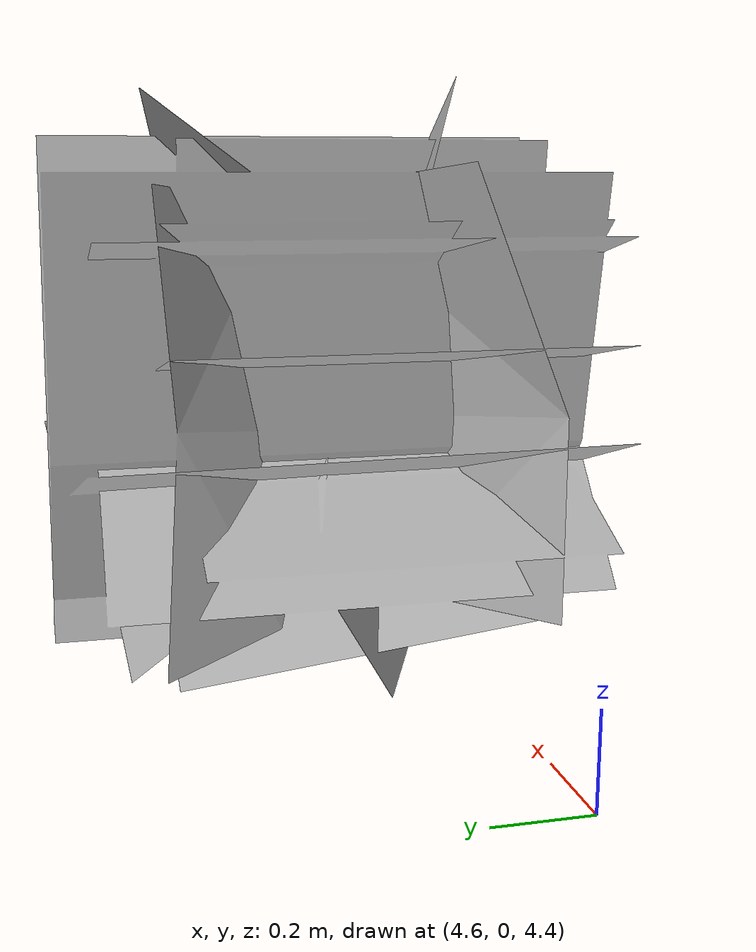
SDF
<?xml version="1.0" ?>
<sdf version="1.9">
  <model name="bush_04">
    <static>true</static>
    <link name="link">
      <collision name="collision">
        <pose>0 0 0.5 0 0 0</pose>
        <geometry>
          <box>
            <size>1.2 1.2 1.0</size>
          </box>
        </geometry>
      </collision>
      <visual name="visual">
        <geometry>
          <mesh>
            <uri>model://bush_04/meshes/Bush-04.obj</uri>
          </mesh>
        </geometry>
      </visual>
    </link>
  </model>
</sdf>
